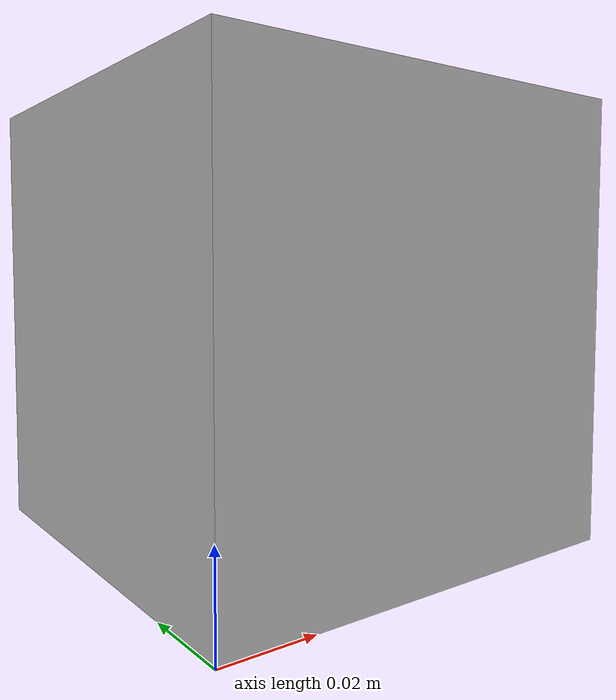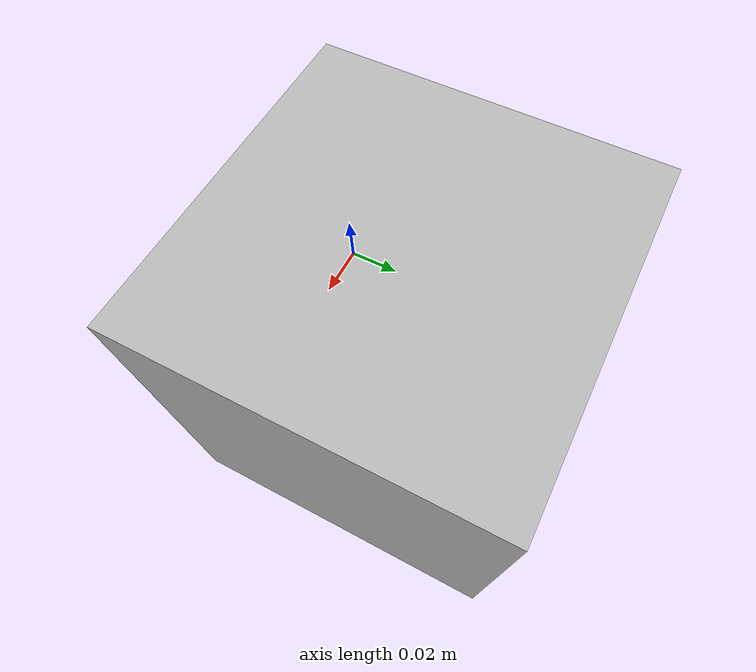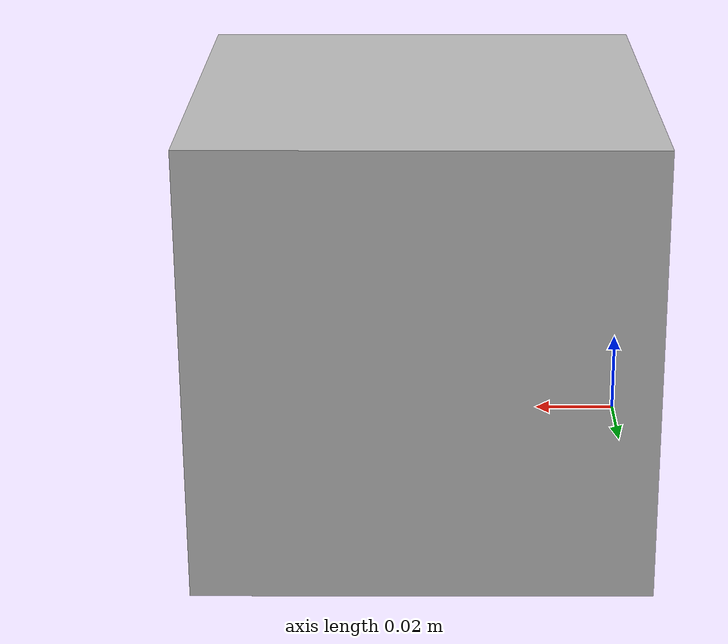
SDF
<?xml version="1.0" ?>
<sdf version="1.3">
  <model name="stereocamera">
    <link name="link">
      <pose>0.05 0.05 0.05 0 0 0</pose>
      <inertial>
        <mass>0.1</mass>
      </inertial>

      <visual name="collision">
        <geometry>
          <box>
            <size>0.1 0.1 0.1</size>
          </box>
        </geometry>
      </visual>

      <visual name="visual">
        <geometry>
          <box>
            <size>0.1 0.1 0.1</size>
          </box>
        </geometry>
      </visual>

      <sensor name="camera" type="multicamera">
        <always_on>1</always_on>
        <update_rate>30</update_rate>
        <visualize>false</visualize>

        <camera name="left">
          <pose>0 0.2 0 0 0 0</pose>
          <horizontal_fov>1.047</horizontal_fov>
          <image>
            <width>320</width>
            <height>240</height>
          </image>
          <clip>
            <near>0.1</near>
            <far>100</far>
          </clip>
        </camera>

        <camera name="right">
          <pose>0 -0.2 0 0 0 0</pose>
          <horizontal_fov>1.047</horizontal_fov>
          <image>
            <width>320</width>
            <height>240</height>
          </image>
          <clip>
            <near>0.1</near>
            <far>100</far>
          </clip>
        </camera>

      </sensor>
    </link>
  </model>
</sdf>
